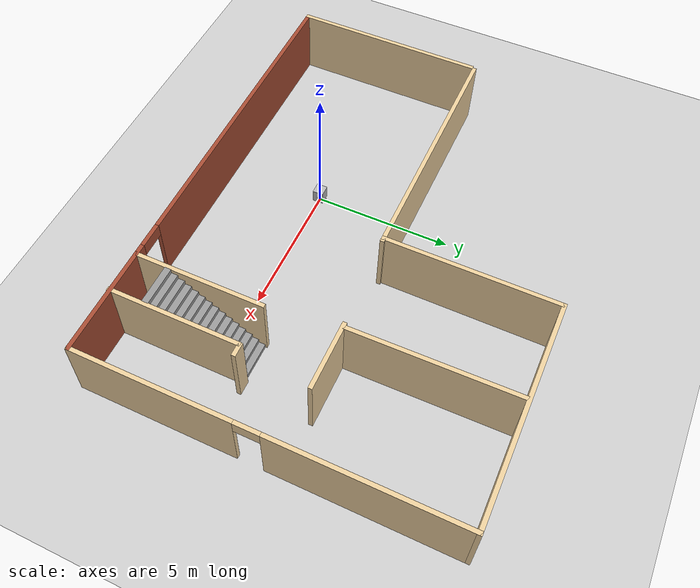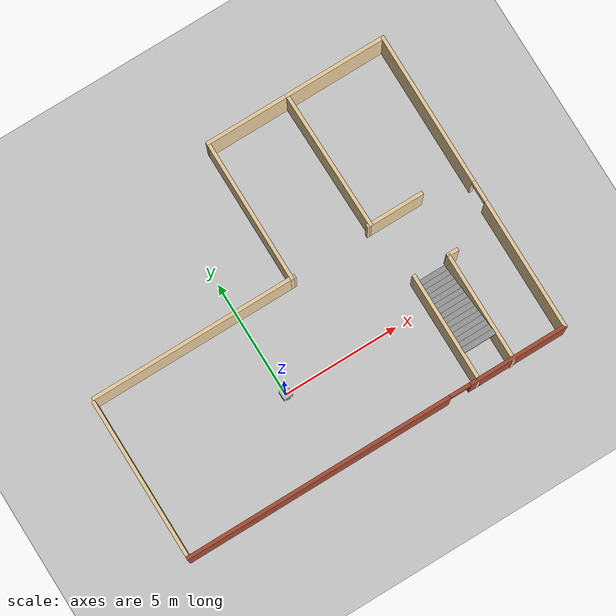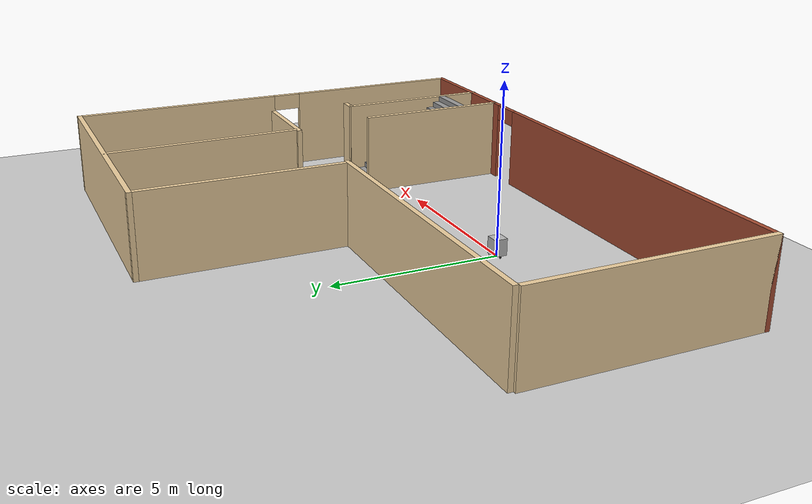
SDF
<sdf version="1.7">
 <world name="default">
  <light name="sun" type="directional">
   <pose>0 0 10 0 -0 0</pose>
   <diffuse>0.8 0.8 0.8 1</diffuse>
   <specular>0.2 0.2 0.2 1</specular>
   <attenuation>
    <range>1000</range>
    <constant>0.9</constant>
    <linear>0.01</linear>
    <quadratic>0.001</quadratic>
   </attenuation>
   <direction>-0.5 0.1 -0.9</direction>
   <spot><inner_angle>0</inner_angle><outer_angle>0</outer_angle><falloff>0</falloff></spot>
  </light>
  <model name="ground_plane">
   <static>1</static>
   <link name="link">
    <collision name="collision">
     <geometry><plane><normal>0 0 1</normal><size>100 100</size></plane></geometry>
     <surface>
      <contact><collide_bitmask>65535</collide_bitmask></contact>
      <friction><ode><mu>100</mu><mu2>50</mu2></ode></friction>
     </surface>
    </collision>
    <visual name="visual">
     <cast_shadows>0</cast_shadows>
     <geometry><plane><normal>0 0 1</normal><size>100 100</size></plane></geometry>
     <material>
      <script><uri>file://media/materials/scripts/gazebo.material</uri><name>Gazebo/Grey</name></script>
     </material>
    </visual>
   </link>
  </model>
  <gravity>0 0 -9.8</gravity>
  <magnetic_field>6e-06 2.3e-05 -4.2e-05</magnetic_field>
  <atmosphere type="adiabatic"/>
  <physics name="default_physics" default="0" type="ode">
   <max_step_size>0.001</max_step_size>
   <real_time_factor>1</real_time_factor>
   <real_time_update_rate>1000</real_time_update_rate>
  </physics>
  <scene><ambient>0.4 0.4 0.4 1</ambient><background>0.7 0.7 0.7 1</background><shadows>1</shadows></scene>
  <spherical_coordinates>
   <surface_model>EARTH_WGS84</surface_model>
   <latitude_deg>0</latitude_deg>
   <longitude_deg>0</longitude_deg>
   <elevation>0</elevation>
   <heading_deg>0</heading_deg>
  </spherical_coordinates>
  <model name="lounge">
   <pose>1.91507 2.98558 0 0 -0 0</pose>
   <link name="Stairs_0">
    <visual name="Stairs_0_Visual_0">
     <pose>5.26794 -2.03684 0.083333 0 -0 0</pose>
     <geometry><box><size>1.41269 0.233333 0.166667</size></box></geometry>
     <material>
      <script><uri>file://media/materials/scripts/gazebo.material</uri><name>Gazebo/Grey</name></script>
      <ambient>1 1 1 1</ambient>
     </material>
     <meta><layer>0</layer></meta>
    </visual>
    <collision name="Stairs_0_Collision_0">
     <geometry><box><size>1.41269 0.233333 0.166667</size></box></geometry>
     <pose>5.26794 -2.03684 0.083333 0 -0 0</pose>
    </collision>
    <visual name="Stairs_0_Visual_1">
     <pose>5.26794 -2.27017 0.25 0 -0 0</pose>
     <geometry><box><size>1.41269 0.233333 0.166667</size></box></geometry>
     <material>
      <script><uri>file://media/materials/scripts/gazebo.material</uri><name>Gazebo/Grey</name></script>
      <ambient>1 1 1 1</ambient>
     </material>
     <meta><layer>0</layer></meta>
    </visual>
    <collision name="Stairs_0_Collision_1">
     <geometry><box><size>1.41269 0.233333 0.166667</size></box></geometry>
     <pose>5.26794 -2.27017 0.25 0 -0 0</pose>
    </collision>
    <visual name="Stairs_0_Visual_2">
     <pose>5.26794 -2.50351 0.416667 0 -0 0</pose>
     <geometry><box><size>1.41269 0.233333 0.166667</size></box></geometry>
     <material>
      <script><uri>file://media/materials/scripts/gazebo.material</uri><name>Gazebo/Grey</name></script>
      <ambient>1 1 1 1</ambient>
     </material>
     <meta><layer>0</layer></meta>
    </visual>
    <collision name="Stairs_0_Collision_2">
     <geometry><box><size>1.41269 0.233333 0.166667</size></box></geometry>
     <pose>5.26794 -2.50351 0.416667 0 -0 0</pose>
    </collision>
    <visual name="Stairs_0_Visual_3">
     <pose>5.26794 -2.73684 0.583333 0 -0 0</pose>
     <geometry><box><size>1.41269 0.233333 0.166667</size></box></geometry>
     <material>
      <script><uri>file://media/materials/scripts/gazebo.material</uri><name>Gazebo/Grey</name></script>
      <ambient>1 1 1 1</ambient>
     </material>
     <meta><layer>0</layer></meta>
    </visual>
    <collision name="Stairs_0_Collision_3">
     <geometry><box><size>1.41269 0.233333 0.166667</size></box></geometry>
     <pose>5.26794 -2.73684 0.583333 0 -0 0</pose>
    </collision>
    <visual name="Stairs_0_Visual_4">
     <pose>5.26794 -2.97017 0.75 0 -0 0</pose>
     <geometry><box><size>1.41269 0.233333 0.166667</size></box></geometry>
     <material>
      <script><uri>file://media/materials/scripts/gazebo.material</uri><name>Gazebo/Grey</name></script>
      <ambient>1 1 1 1</ambient>
     </material>
     <meta><layer>0</layer></meta>
    </visual>
    <collision name="Stairs_0_Collision_4">
     <geometry><box><size>1.41269 0.233333 0.166667</size></box></geometry>
     <pose>5.26794 -2.97017 0.75 0 -0 0</pose>
    </collision>
    <visual name="Stairs_0_Visual_5">
     <pose>5.26794 -3.2035 0.916667 0 -0 0</pose>
     <geometry><box><size>1.41269 0.233333 0.166667</size></box></geometry>
     <material>
      <script><uri>file://media/materials/scripts/gazebo.material</uri><name>Gazebo/Grey</name></script>
      <ambient>1 1 1 1</ambient>
     </material>
     <meta><layer>0</layer></meta>
    </visual>
    <collision name="Stairs_0_Collision_5">
     <geometry><box><size>1.41269 0.233333 0.166667</size></box></geometry>
     <pose>5.26794 -3.2035 0.916667 0 -0 0</pose>
    </collision>
    <visual name="Stairs_0_Visual_6">
     <pose>5.26794 -3.43684 1.08333 0 -0 0</pose>
     <geometry><box><size>1.41269 0.233333 0.166667</size></box></geometry>
     <material>
      <script><uri>file://media/materials/scripts/gazebo.material</uri><name>Gazebo/Grey</name></script>
      <ambient>1 1 1 1</ambient>
     </material>
     <meta><layer>0</layer></meta>
    </visual>
    <collision name="Stairs_0_Collision_6">
     <geometry><box><size>1.41269 0.233333 0.166667</size></box></geometry>
     <pose>5.26794 -3.43684 1.08333 0 -0 0</pose>
    </collision>
    <visual name="Stairs_0_Visual_7">
     <pose>5.26794 -3.67017 1.25 0 -0 0</pose>
     <geometry><box><size>1.41269 0.233333 0.166667</size></box></geometry>
     <material>
      <script><uri>file://media/materials/scripts/gazebo.material</uri><name>Gazebo/Grey</name></script>
      <ambient>1 1 1 1</ambient>
     </material>
     <meta><layer>0</layer></meta>
    </visual>
    <collision name="Stairs_0_Collision_7">
     <geometry><box><size>1.41269 0.233333 0.166667</size></box></geometry>
     <pose>5.26794 -3.67017 1.25 0 -0 0</pose>
    </collision>
    <visual name="Stairs_0_Visual_8">
     <pose>5.26794 -3.90351 1.41667 0 -0 0</pose>
     <geometry><box><size>1.41269 0.233333 0.166667</size></box></geometry>
     <material>
      <script><uri>file://media/materials/scripts/gazebo.material</uri><name>Gazebo/Grey</name></script>
      <ambient>1 1 1 1</ambient>
     </material>
     <meta><layer>0</layer></meta>
    </visual>
    <collision name="Stairs_0_Collision_8">
     <geometry><box><size>1.41269 0.233333 0.166667</size></box></geometry>
     <pose>5.26794 -3.90351 1.41667 0 -0 0</pose>
    </collision>
    <visual name="Stairs_0_Visual_9">
     <pose>5.26794 -4.13684 1.58333 0 -0 0</pose>
     <geometry><box><size>1.41269 0.233333 0.166667</size></box></geometry>
     <material>
      <script><uri>file://media/materials/scripts/gazebo.material</uri><name>Gazebo/Grey</name></script>
      <ambient>1 1 1 1</ambient>
     </material>
     <meta><layer>0</layer></meta>
    </visual>
    <collision name="Stairs_0_Collision_9">
     <geometry><box><size>1.41269 0.233333 0.166667</size></box></geometry>
     <pose>5.26794 -4.13684 1.58333 0 -0 0</pose>
    </collision>
    <visual name="Stairs_0_Visual_10">
     <pose>5.26794 -4.37017 1.75 0 -0 0</pose>
     <geometry><box><size>1.41269 0.233333 0.166667</size></box></geometry>
     <material>
      <script><uri>file://media/materials/scripts/gazebo.material</uri><name>Gazebo/Grey</name></script>
      <ambient>1 1 1 1</ambient>
     </material>
     <meta><layer>0</layer></meta>
    </visual>
    <collision name="Stairs_0_Collision_10">
     <geometry><box><size>1.41269 0.233333 0.166667</size></box></geometry>
     <pose>5.26794 -4.37017 1.75 0 -0 0</pose>
    </collision>
    <visual name="Stairs_0_Visual_11">
     <pose>5.26794 -4.60351 1.91667 0 -0 0</pose>
     <geometry><box><size>1.41269 0.233333 0.166667</size></box></geometry>
     <material>
      <script><uri>file://media/materials/scripts/gazebo.material</uri><name>Gazebo/Grey</name></script>
      <ambient>1 1 1 1</ambient>
     </material>
     <meta><layer>0</layer></meta>
    </visual>
    <collision name="Stairs_0_Collision_11">
     <geometry><box><size>1.41269 0.233333 0.166667</size></box></geometry>
     <pose>5.26794 -4.60351 1.91667 0 -0 0</pose>
    </collision>
    <visual name="Stairs_0_Visual_12">
     <pose>5.26794 -4.83684 2.08333 0 -0 0</pose>
     <geometry><box><size>1.41269 0.233333 0.166667</size></box></geometry>
     <material>
      <script><uri>file://media/materials/scripts/gazebo.material</uri><name>Gazebo/Grey</name></script>
      <ambient>1 1 1 1</ambient>
     </material>
     <meta><layer>0</layer></meta>
    </visual>
    <collision name="Stairs_0_Collision_12">
     <geometry><box><size>1.41269 0.233333 0.166667</size></box></geometry>
     <pose>5.26794 -4.83684 2.08333 0 -0 0</pose>
    </collision>
    <visual name="Stairs_0_Visual_13">
     <pose>5.26794 -5.07017 2.25 0 -0 0</pose>
     <geometry><box><size>1.41269 0.233333 0.166667</size></box></geometry>
     <material>
      <script><uri>file://media/materials/scripts/gazebo.material</uri><name>Gazebo/Grey</name></script>
      <ambient>1 1 1 1</ambient>
     </material>
     <meta><layer>0</layer></meta>
    </visual>
    <collision name="Stairs_0_Collision_13">
     <geometry><box><size>1.41269 0.233333 0.166667</size></box></geometry>
     <pose>5.26794 -5.07017 2.25 0 -0 0</pose>
    </collision>
    <visual name="Stairs_0_Visual_14">
     <pose>5.26794 -5.30351 2.41667 0 -0 0</pose>
     <geometry><box><size>1.41269 0.233333 0.166667</size></box></geometry>
     <material>
      <script><uri>file://media/materials/scripts/gazebo.material</uri><name>Gazebo/Grey</name></script>
      <ambient>1 1 1 1</ambient>
     </material>
     <meta><layer>0</layer></meta>
    </visual>
    <collision name="Stairs_0_Collision_14">
     <geometry><box><size>1.41269 0.233333 0.166667</size></box></geometry>
     <pose>5.26794 -5.30351 2.41667 0 -0 0</pose>
    </collision>
   </link>
   <link name="Wall_25">
    <collision name="Wall_25_Collision">
     <geometry><box><size>7 0.15 2.5</size></box></geometry>
     <pose>0 0 1.25 0 -0 0</pose>
    </collision>
    <visual name="Wall_25_Visual">
     <pose>0 0 1.25 0 -0 0</pose>
     <geometry><box><size>7 0.15 2.5</size></box></geometry>
     <material>
      <script><uri>file://media/materials/scripts/gazebo.material</uri><name>Gazebo/Grey</name></script>
      <ambient>0.921569 0.807843 0.615686 1</ambient>
     </material>
     <meta><layer>0</layer></meta>
    </visual>
    <pose>-8.35 -3.11051 0 0 0 -1.5708</pose>
   </link>
   <link name="Wall_27">
    <pose>-1.925 -6.53552 0 0 -0 0</pose>
    <visual name="Wall_27_Visual_0">
     <pose>-0.677313 0 1.25 0 -0 0</pose>
     <geometry><box><size>11.6454 0.15 2.5</size></box></geometry>
     <material>
      <script><uri>file://media/materials/scripts/gazebo.material</uri><name>Gazebo/Bricks</name></script>
      <ambient>1 1 1 1</ambient>
     </material>
     <meta><layer>0</layer></meta>
    </visual>
    <collision name="Wall_27_Collision_0">
     <geometry><box><size>11.6454 0.15 2.5</size></box></geometry>
     <pose>-0.677313 0 1.25 0 -0 0</pose>
    </collision>
    <visual name="Wall_27_Visual_1">
     <pose>6.27269 0 1.25 0 -0 0</pose>
     <geometry><box><size>0.454627 0.15 2.5</size></box></geometry>
     <material>
      <script><uri>file://media/materials/scripts/gazebo.material</uri><name>Gazebo/Bricks</name></script>
      <ambient>1 1 1 1</ambient>
     </material>
     <meta><layer>0</layer></meta>
    </visual>
    <collision name="Wall_27_Collision_1">
     <geometry><box><size>0.454627 0.15 2.5</size></box></geometry>
     <pose>6.27269 0 1.25 0 -0 0</pose>
    </collision>
    <visual name="Wall_27_Visual_2">
     <pose>5.59537 0 2.25 0 -0 0</pose>
     <geometry><box><size>0.9 0.15 0.5</size></box></geometry>
     <material>
      <script><uri>file://media/materials/scripts/gazebo.material</uri><name>Gazebo/Bricks</name></script>
      <ambient>1 1 1 1</ambient>
     </material>
     <meta><layer>0</layer></meta>
    </visual>
    <collision name="Wall_27_Collision_2">
     <geometry><box><size>0.9 0.15 0.5</size></box></geometry>
     <pose>5.59537 0 2.25 0 -0 0</pose>
    </collision>
   </link>
   <link name="Wall_28">
    <collision name="Wall_28_Collision">
     <geometry><box><size>4.75 0.15 2.5</size></box></geometry>
     <pose>0 0 1.25 0 -0 0</pose>
    </collision>
    <visual name="Wall_28_Visual">
     <pose>0 0 1.25 0 -0 0</pose>
     <geometry><box><size>4.75 0.15 2.5</size></box></geometry>
     <material>
      <script><uri>file://media/materials/scripts/gazebo.material</uri><name>Gazebo/Grey</name></script>
      <ambient>0.921569 0.807843 0.615686 1</ambient>
     </material>
     <meta><layer>0</layer></meta>
    </visual>
    <pose>4.5 -4.23552 0 0 -0 1.5708</pose>
   </link>
   <link name="Wall_30">
    <collision name="Wall_30_Collision">
     <geometry><box><size>4 0.15 2.5</size></box></geometry>
     <pose>0 0 1.25 0 -0 0</pose>
    </collision>
    <visual name="Wall_30_Visual">
     <pose>0 0 1.25 0 -0 0</pose>
     <geometry><box><size>4 0.15 2.5</size></box></geometry>
     <material>
      <script><uri>file://media/materials/scripts/gazebo.material</uri><name>Gazebo/Bricks</name></script>
      <ambient>1 1 1 1</ambient>
     </material>
     <meta><layer>0</layer></meta>
    </visual>
    <pose>6.425 -6.53552 0 0 -0 0</pose>
   </link>
   <link name="Wall_31">
    <pose>8.35 0.014485 0 0 -0 1.5708</pose>
    <visual name="Wall_31_Visual_0">
     <pose>-3.77058 0 1.25 0 -0 0</pose>
     <geometry><box><size>5.70883 0.15 2.5</size></box></geometry>
     <material>
      <script><uri>file://media/materials/scripts/gazebo.material</uri><name>Gazebo/Grey</name></script>
      <ambient>0.921569 0.807843 0.615686 1</ambient>
     </material>
     <meta><layer>0</layer></meta>
    </visual>
    <collision name="Wall_31_Collision_0">
     <geometry><box><size>5.70883 0.15 2.5</size></box></geometry>
     <pose>-3.77058 0 1.25 0 -0 0</pose>
    </collision>
    <visual name="Wall_31_Visual_1">
     <pose>3.30442 0 1.25 0 -0 0</pose>
     <geometry><box><size>6.64117 0.15 2.5</size></box></geometry>
     <material>
      <script><uri>file://media/materials/scripts/gazebo.material</uri><name>Gazebo/Grey</name></script>
      <ambient>0.921569 0.807843 0.615686 1</ambient>
     </material>
     <meta><layer>0</layer></meta>
    </visual>
    <collision name="Wall_31_Collision_1">
     <geometry><box><size>6.64117 0.15 2.5</size></box></geometry>
     <pose>3.30442 0 1.25 0 -0 0</pose>
    </collision>
    <visual name="Wall_31_Visual_2">
     <pose>-0.466169 0 2.25 0 -0 0</pose>
     <geometry><box><size>0.9 0.15 0.5</size></box></geometry>
     <material>
      <script><uri>file://media/materials/scripts/gazebo.material</uri><name>Gazebo/Grey</name></script>
      <ambient>0.921569 0.807843 0.615686 1</ambient>
     </material>
     <meta><layer>0</layer></meta>
    </visual>
    <collision name="Wall_31_Collision_2">
     <geometry><box><size>0.9 0.15 0.5</size></box></geometry>
     <pose>-0.466169 0 2.25 0 -0 0</pose>
    </collision>
   </link>
   <link name="Wall_32">
    <collision name="Wall_32_Collision">
     <geometry><box><size>8 0.15 2.5</size></box></geometry>
     <pose>0 0 1.25 0 -0 0</pose>
    </collision>
    <visual name="Wall_32_Visual">
     <pose>0 0 1.25 0 -0 0</pose>
     <geometry><box><size>8 0.15 2.5</size></box></geometry>
     <material>
      <script><uri>file://media/materials/scripts/gazebo.material</uri><name>Gazebo/Grey</name></script>
      <ambient>0.921569 0.807843 0.615686 1</ambient>
     </material>
     <meta><layer>0</layer></meta>
    </visual>
    <pose>4.425 6.56449 0 0 -0 3.14159</pose>
   </link>
   <link name="Wall_33">
    <collision name="Wall_33_Collision">
     <geometry><box><size>6.25052 0.15 2.5</size></box></geometry>
     <pose>0 0 1.25 0 -0 0</pose>
    </collision>
    <visual name="Wall_33_Visual">
     <pose>0 0 1.25 0 -0 0</pose>
     <geometry><box><size>6.25052 0.15 2.5</size></box></geometry>
     <material>
      <script><uri>file://media/materials/scripts/gazebo.material</uri><name>Gazebo/Grey</name></script>
      <ambient>0.921569 0.807843 0.615686 1</ambient>
     </material>
     <meta><layer>0</layer></meta>
    </visual>
    <pose>0.5 3.51449 0 0 0 -1.5708</pose>
   </link>
   <link name="Wall_34">
    <collision name="Wall_34_Collision">
     <geometry><box><size>9 0.15 2.5</size></box></geometry>
     <pose>0 0 1.25 0 -0 0</pose>
    </collision>
    <visual name="Wall_34_Visual">
     <pose>0 0 1.25 0 -0 0</pose>
     <geometry><box><size>9 0.15 2.5</size></box></geometry>
     <material>
      <script><uri>file://media/materials/scripts/gazebo.material</uri><name>Gazebo/Grey</name></script>
      <ambient>0.921569 0.807843 0.615686 1</ambient>
     </material>
     <meta><layer>0</layer></meta>
    </visual>
    <pose>-3.845 0.464485 0 0 -0 3.14159</pose>
   </link>
   <link name="Wall_36">
    <collision name="Wall_36_Collision">
     <geometry><box><size>6.02472 0.15 2.5</size></box></geometry>
     <pose>0 0 1.25 0 -0 0</pose>
    </collision>
    <visual name="Wall_36_Visual">
     <pose>0 0 1.25 0 -0 0</pose>
     <geometry><box><size>6.02472 0.15 2.5</size></box></geometry>
     <material>
      <script><uri>file://media/materials/scripts/gazebo.material</uri><name>Gazebo/Grey</name></script>
      <ambient>0.921569 0.807843 0.615686 1</ambient>
     </material>
     <meta><layer>0</layer></meta>
    </visual>
    <pose>4.08753 3.58036 0 0 0 -1.55513</pose>
   </link>
   <link name="Wall_37">
    <collision name="Wall_37_Collision">
     <geometry><box><size>2.5 0.15 2.5</size></box></geometry>
     <pose>0 0 1.25 0 -0 0</pose>
    </collision>
    <visual name="Wall_37_Visual">
     <pose>0 0 1.25 0 -0 0</pose>
     <geometry><box><size>2.5 0.15 2.5</size></box></geometry>
     <material>
      <script><uri>file://media/materials/scripts/gazebo.material</uri><name>Gazebo/Grey</name></script>
      <ambient>0.921569 0.807843 0.615686 1</ambient>
     </material>
     <meta><layer>0</layer></meta>
    </visual>
    <pose>5.21653 0.643356 0 0 -0 0</pose>
   </link>
   <link name="Wall_39">
    <collision name="Wall_39_Collision">
     <geometry><box><size>4.75 0.15 2.5</size></box></geometry>
     <pose>0 0 1.25 0 -0 0</pose>
    </collision>
    <visual name="Wall_39_Visual">
     <pose>0 0 1.25 0 -0 0</pose>
     <geometry><box><size>4.75 0.15 2.5</size></box></geometry>
     <material>
      <script><uri>file://media/materials/scripts/gazebo.material</uri><name>Gazebo/Grey</name></script>
      <ambient>0.921569 0.807843 0.615686 1</ambient>
     </material>
     <meta><layer>0</layer></meta>
    </visual>
    <pose>6.03095 -4.26475 0 0 0 -1.5708</pose>
   </link>
   <link name="Wall_41">
    <collision name="Wall_41_Collision">
     <geometry><box><size>0.5 0.15 2.5</size></box></geometry>
     <pose>0 0 1.25 0 -0 0</pose>
    </collision>
    <visual name="Wall_41_Visual">
     <pose>0 0 1.25 0 -0 0</pose>
     <geometry><box><size>0.5 0.15 2.5</size></box></geometry>
     <material>
      <script><uri>file://media/materials/scripts/gazebo.material</uri><name>Gazebo/Grey</name></script>
      <ambient>0.921569 0.807843 0.615686 1</ambient>
     </material>
     <meta><layer>0</layer></meta>
    </visual>
    <pose>6.21776 -1.90848 0 0 -0 0</pose>
   </link>
   <static>1</static>
  </model>
  <model name="yzbot_0">
   <link name="base_footprint">
    <inertial>
     <pose>-0 0 0.288864 0 -0 0</pose>
     <mass>0.44</mass>
     <inertia>
      <ixx>0.140409</ixx>
      <ixy>0</ixy>
      <ixz>-1.68544e-20</ixz>
      <iyy>0.221705</iyy>
      <iyz>0</iyz>
      <izz>0.132736</izz>
     </inertia>
    </inertial>
    <collision name="base_footprint_fixed_joint_lump__base_link_collision">
     <pose>0 0 0.25 0 -0 0</pose>
     <geometry><box><size>0.4 0.39 0.5</size></box></geometry>
    </collision>
    <collision name="base_footprint_fixed_joint_lump__caster_back_link_collision_1">
     <pose>-0.18 0 -0.035 1.57079 -0 0</pose>
     <geometry><sphere><radius>0.035</radius></sphere></geometry>
     <surface>
      <contact><ode><kp>1e+06</kp><kd>10</kd></ode></contact>
      <friction><ode><mu>0</mu><mu2>0</mu2></ode></friction>
     </surface>
    </collision>
    <collision name="base_footprint_fixed_joint_lump__caster_front_link_collision_2">
     <pose>0.18 0 -0.035 1.57079 -0 0</pose>
     <geometry><sphere><radius>0.035</radius></sphere></geometry>
     <surface>
      <contact><ode><kp>1e+06</kp><kd>10</kd></ode></contact>
      <friction><ode><mu>0</mu><mu2>0</mu2></ode></friction>
     </surface>
    </collision>
    <collision name="base_footprint_fixed_joint_lump__imu_link_collision_3">
     <pose>0 0 0.27 0 -0 0</pose>
     <geometry><box><size>0.02 0.02 0.02</size></box></geometry>
    </collision>
    <collision name="base_footprint_fixed_joint_lump__laser_link_collision_4">
     <pose>0 0 0.515 0 -0 0</pose>
     <geometry><cylinder><length>0.02</length><radius>0.02</radius></cylinder></geometry>
    </collision>
    <visual name="base_footprint_fixed_joint_lump__base_link_visual">
     <pose>0 0 0.25 0 -0 0</pose>
     <geometry><box><size>0.4 0.39 0.5</size></box></geometry>
    </visual>
    <visual name="base_footprint_fixed_joint_lump__caster_back_link_visual_1">
     <pose>-0.18 0 -0.035 1.57079 -0 0</pose>
     <geometry><sphere><radius>0.035</radius></sphere></geometry>
     <material>
      <script><name>Gazebo/Black</name><uri>file://media/materials/scripts/gazebo.material</uri></script>
     </material>
    </visual>
    <visual name="base_footprint_fixed_joint_lump__caster_front_link_visual_2">
     <pose>0.18 0 -0.035 1.57079 -0 0</pose>
     <geometry><sphere><radius>0.035</radius></sphere></geometry>
     <material>
      <script><name>Gazebo/Black</name><uri>file://media/materials/scripts/gazebo.material</uri></script>
     </material>
    </visual>
    <visual name="base_footprint_fixed_joint_lump__imu_link_visual_3">
     <pose>0 0 0.27 0 -0 0</pose>
     <geometry><box><size>0.02 0.02 0.02</size></box></geometry>
    </visual>
    <visual name="base_footprint_fixed_joint_lump__pic_link_visual_4">
     <pose>0.2 0 0.25 0 -0 0</pose>
     <geometry><box><size>0.02 0.02 0.05</size></box></geometry>
    </visual>
    <visual name="base_footprint_fixed_joint_lump__laser_link_visual_5">
     <pose>0 0 0.515 0 -0 0</pose>
     <geometry><cylinder><length>0.02</length><radius>0.02</radius></cylinder></geometry>
     <material>
      <script><name>Gazebo/Red</name><uri>file://media/materials/scripts/gazebo.material</uri></script>
     </material>
    </visual>
    <sensor name="imu_sensor" type="imu">
     <plugin name="imu_plugin" filename="libgazebo_ros_imu_sensor.so">
      <ros><namespace>/</namespace><remapping>~/out:=imu</remapping></ros>
      <initial_orientation_as_reference>0</initial_orientation_as_reference>
     </plugin>
     <always_on>1</always_on>
     <update_rate>100</update_rate>
     <visualize>1</visualize>
     <imu>
      <angular_velocity>
       <x>
        <noise type="gaussian">
         <mean>0</mean>
         <stddev>0.0002</stddev>
         <bias_mean>7.5e-06</bias_mean>
         <bias_stddev>8e-07</bias_stddev>
        </noise>
       </x>
       <y>
        <noise type="gaussian">
         <mean>0</mean>
         <stddev>0.0002</stddev>
         <bias_mean>7.5e-06</bias_mean>
         <bias_stddev>8e-07</bias_stddev>
        </noise>
       </y>
       <z>
        <noise type="gaussian">
         <mean>0</mean>
         <stddev>0.0002</stddev>
         <bias_mean>7.5e-06</bias_mean>
         <bias_stddev>8e-07</bias_stddev>
        </noise>
       </z>
      </angular_velocity>
      <linear_acceleration>
       <x>
        <noise type="gaussian">
         <mean>0</mean>
         <stddev>0.017</stddev>
         <bias_mean>0.1</bias_mean>
         <bias_stddev>0.001</bias_stddev>
        </noise>
       </x>
       <y>
        <noise type="gaussian">
         <mean>0</mean>
         <stddev>0.017</stddev>
         <bias_mean>0.1</bias_mean>
         <bias_stddev>0.001</bias_stddev>
        </noise>
       </y>
       <z>
        <noise type="gaussian">
         <mean>0</mean>
         <stddev>0.017</stddev>
         <bias_mean>0.1</bias_mean>
         <bias_stddev>0.001</bias_stddev>
        </noise>
       </z>
      </linear_acceleration>
     </imu>
     <pose>0 0 0.27 0 -0 0</pose>
    </sensor>
    <sensor name="laser_sensor" type="ray">
     <always_on>1</always_on>
     <visualize>1</visualize>
     <update_rate>10</update_rate>
     <ray>
      <scan>
       <horizontal>
        <samples>360</samples>
        <resolution>1</resolution>
        <min_angle>0</min_angle>
        <max_angle>6.28</max_angle>
       </horizontal>
       <vertical><samples>1</samples><min_angle>0</min_angle><max_angle>0</max_angle></vertical>
      </scan>
      <range><min>0.12</min><max>40</max><resolution>0.015</resolution></range>
      <noise><type>gaussian</type><mean>0</mean><stddev>0.01</stddev></noise>
     </ray>
     <plugin name="laserscan" filename="libgazebo_ros_ray_sensor.so">
      <ros><remapping>~/out:=scan</remapping></ros>
      <output_type>sensor_msgs/LaserScan</output_type>
      <frame_name>laser_link</frame_name>
     </plugin>
     <pose>0 0 0.515 0 -0 0</pose>
    </sensor>
   </link>
   <joint name="left_wheel_joint" type="revolute">
    <pose relative_to="base_footprint">0 0.2 0 0 -0 0</pose>
    <parent>base_footprint</parent>
    <child>left_wheel_link</child>
    <axis>
     <xyz>0 1 0</xyz>
     <limit><lower>-1e+16</lower><upper>1e+16</upper></limit>
     <dynamics><spring_reference>0</spring_reference><spring_stiffness>0</spring_stiffness></dynamics>
    </axis>
   </joint>
   <link name="left_wheel_link">
    <pose relative_to="left_wheel_joint">0 0 0 0 -0 0</pose>
    <inertial>
     <mass>0.2</mass>
     <inertia>
      <ixx>0.000190417</ixx>
      <ixy>0</ixy>
      <ixz>0</ixz>
      <iyy>0.0001904</iyy>
      <iyz>0</iyz>
      <izz>0.00036</izz>
     </inertia>
    </inertial>
    <collision name="left_wheel_link_collision">
     <pose>0 0 0 1.57079 -0 0</pose>
     <geometry><cylinder><length>0.05</length><radius>0.07</radius></cylinder></geometry>
    </collision>
    <visual name="left_wheel_link_visual">
     <pose>0 0 0 1.57079 -0 0</pose>
     <geometry><cylinder><length>0.05</length><radius>0.07</radius></cylinder></geometry>
    </visual>
   </link>
   <joint name="right_wheel_joint" type="revolute">
    <pose relative_to="base_footprint">0 -0.2 0 0 -0 0</pose>
    <parent>base_footprint</parent>
    <child>right_wheel_link</child>
    <axis>
     <xyz>0 1 0</xyz>
     <limit><lower>-1e+16</lower><upper>1e+16</upper></limit>
     <dynamics><spring_reference>0</spring_reference><spring_stiffness>0</spring_stiffness></dynamics>
    </axis>
   </joint>
   <link name="right_wheel_link">
    <pose relative_to="right_wheel_joint">0 0 0 0 -0 0</pose>
    <inertial>
     <mass>0.2</mass>
     <inertia>
      <ixx>0.000190417</ixx>
      <ixy>0</ixy>
      <ixz>0</ixz>
      <iyy>0.0001904</iyy>
      <iyz>0</iyz>
      <izz>0.00036</izz>
     </inertia>
    </inertial>
    <collision name="right_wheel_link_collision">
     <pose>0 0 0 1.57079 -0 0</pose>
     <geometry><cylinder><length>0.05</length><radius>0.07</radius></cylinder></geometry>
    </collision>
    <visual name="right_wheel_link_visual">
     <pose>0 0 0 1.57079 -0 0</pose>
     <geometry><cylinder><length>0.05</length><radius>0.07</radius></cylinder></geometry>
    </visual>
   </link>
   <static>0</static>
   <plugin name="diff_drive" filename="libgazebo_ros_diff_drive.so">
    <ros><namespace>/</namespace><remapping>cmd_vel:=cmd_vel</remapping><remapping>odom:=odom</remapping></ros>
    <update_rate>30</update_rate>
    <left_joint>left_wheel_joint</left_joint>
    <right_joint>right_wheel_joint</right_joint>
    <wheel_separation>0.2</wheel_separation>
    <wheel_diameter>0.065</wheel_diameter>
    <max_wheel_torque>20</max_wheel_torque>
    <max_wheel_acceleration>1.0</max_wheel_acceleration>
    <publish_odom>1</publish_odom>
    <publish_odom_tf>1</publish_odom_tf>
    <publish_wheel_tf>1</publish_wheel_tf>
    <odometry_frame>odom</odometry_frame>
    <robot_base_frame>base_footprint</robot_base_frame>
   </plugin>
   <pose>0.004757 -0.00056 0.07 1e-06 1e-06 0.007592</pose>
  </model>
 </world>
</sdf>
